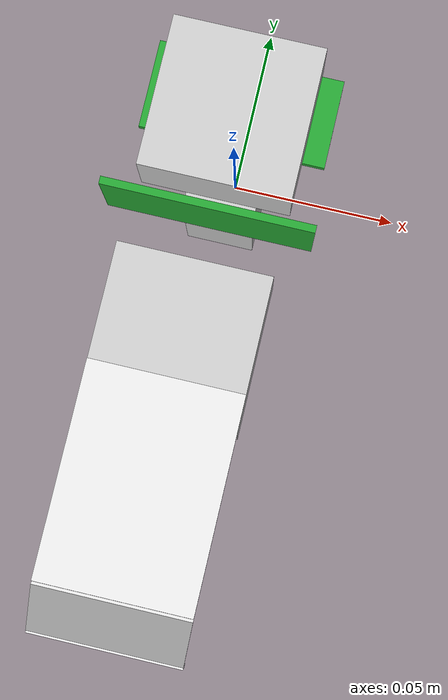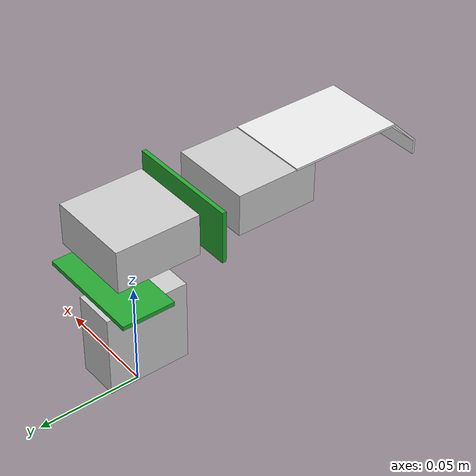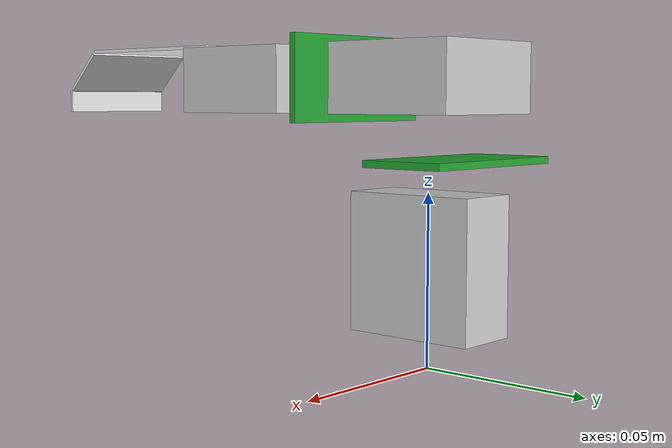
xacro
<robot name="lobot" xmlns:xacro="http://ros.org/wiki/xacro">
    <xacro:include filename="$(find lobot_description)/urdf/materials.urdf.xacro" />
    <xacro:include filename="$(find lobot_description)/gazebo/gazebo_arm.urdf.xacro" />
    <xacro:gazebo_macro robot="arm_standalone" control_update_rate="100" status_update_rate="500" />
    <link name="world" />
    <joint name="world_joint" type="fixed">
        <parent link="world" />
        <child link="arm_1_link" />
        <origin xyz="0 0 0.03" rpy="0 0 0" />
    </joint>
    <gazebo reference="arm_1_link">
      <selfCollide>true</selfCollide>
    </gazebo>
    <link name="arm_1_link">
        <inertial>
            <mass value="0.06" />
            <origin rpy="0 0 0" xyz="0 0 0" />
            <inertia ixx="0.0" ixy="0.0" ixz="0.0" iyy="0.0" iyz="0.0" izz="0.0" />
        </inertial>
        <visual>
            <origin rpy="0 0 0" xyz="0 0 0" />
            <geometry>
                <box size="0.02 0.04 0.04" />
            </geometry>
            <material name="LightGrey" />
        </visual>
        <collision>
            <origin rpy="0 0 0" xyz="0 0 0" />
            <geometry>
                <box size="0.02 0.04 0.04" />
            </geometry>
        </collision>
    </link>

    <joint name="arm_1_joint" type="revolute">
        <origin xyz="0 0.01 0.0" rpy="0 0 0" />
        <axis xyz="0 0 1" />
        <parent link="arm_1_link" />
        <child link="arm_bracket_1" />
        <limit lower="-2.356" upper="2.356" effort="20" velocity="10" />
    </joint>

    <link name="arm_bracket_1">
        <inertial>
            <mass value="0.00658" />
            <origin xyz="0 0 0.03693" rpy="0 0 0" />
            <inertia ixx="0.00097149" ixy="0.0" ixz="0.0" iyy="0.00390446" iyz="0.0" izz="0.00346115" />
        </inertial>
        <visual>
            <origin xyz="0 0 0.029" rpy="0 0 0" />
            <geometry>
                <box size="0.052 0.025 0.002" />
            </geometry>
            <material name="Green" />
        </visual>
        <collision>
            <origin xyz="0 0 0.029" rpy="0 0 0" />
            <geometry>
                <box size="0.052 0.025 0.002" />
            </geometry>
        </collision>
    </link>

    <joint name="arm_2_joint" type="revolute">
        <origin xyz="0 0 0.052" rpy="0 0 0" />
        <axis xyz="1 0 0" />
        <parent link="arm_bracket_1" />
        <child link="arm_2_link" />
        <limit lower="-1.570796" upper="1.570796" effort="20" velocity="20" />
    </joint>
    <!-- arm_2_link = motor2 -->
    <link name="arm_2_link">
        <inertial>
            <mass value="0.0618" />
            <origin xyz="0.0005 -0.01505 0" rpy="0 0 0" />
            <inertia ixx="0.00703304" ixy="-0.00250174" ixz="0.0" iyy="0.00793603" iyz="0.0" izz="0.01230371" />
        </inertial>
        <visual>
            <origin xyz="0 -0.01 0" rpy="0 0 0" />
            <geometry>
                <box size="0.04 0.04 0.02" />
            </geometry>
            <material name="LightGrey" />
        </visual>
        <collision>
            <origin xyz="0 -0.01 0" rpy="0 0 0" />
            <geometry>
                <box size="0.04 0.04 0.02" />
            </geometry>
        </collision>
    </link>

    <!-- arm_bracket_2 = Asm_WeldedBracket -->
    <link name="arm_bracket_2">
        <inertial>
            <mass value="0.01175" />
            <origin xyz="0 -0.0029 0" rpy="0 0 0" />
            <inertia ixx="0.00229954" ixy="0.0" ixz="0.0" iyy="0.00519619" iyz="0.0" izz="0.00648306" />
        </inertial>
        <visual>
            <origin xyz="0 0 0" rpy="0 0 0" />
            <geometry>
                <box size="0.055 0.002 0.025" />
            </geometry>
            <material name="Green" />
        </visual>
        <collision>
            <origin xyz="0 0 0" rpy="0 0 0" />
            <geometry>
                <box size="0.055 0.002 0.025" />
            </geometry>
        </collision>
    </link>

    <joint name="arm_bracket_2_joint" type="fixed">
        <parent link="arm_2_link" />
        <child link="arm_bracket_2" />
        <origin xyz="0 -0.03653 0" rpy="0 0 0" />
    </joint>

    <joint name="arm_3_joint" type="revolute">
        <origin xyz="0 -0.06 0" rpy="0 0 0" />
        <axis xyz="1 0 0" />
        <parent link="arm_2_link" />
        <child link="arm_3_link" />
        <limit lower="-1.570796" upper="1.570796" effort="10" velocity="10" />
    </joint>
    <!-- arm_3_link = motor3 -->
    <link name="arm_3_link">
        <inertial>
            <mass value="0.0618" />
            <origin xyz="0.0005 -0.01505 0" rpy="0 0 0" />
            <inertia ixx="0.00703304" ixy="-0.00250174" ixz="0.0" iyy="0.00793603" iyz="0.0" izz="0.01230371" />
        </inertial>
        <visual>
            <origin xyz="0 -0.01 0" rpy="0 0 0" />
            <geometry>
                <box size="0.04 0.04 0.02" />
            </geometry>
            <material name="LightGrey" />
        </visual>
        <collision>
            <origin xyz="0 -0.01 0" rpy="0 0 0" />
            <geometry>
                <box size="0.04 0.04 0.02" />
            </geometry>
        </collision>
    </link>
    <!-- The entire grippper mass property is put on the first link -->
    <joint name="grip_joint_1" type="fixed">
        <parent link="arm_3_link" />
        <child link="grip_link_1" />
        <origin xyz="0 -0.0475 0.01" rpy="0 0 0" />
    </joint>
    <link name="grip_link_1">
        <inertial>
            <mass value="0.01023" />
            <origin xyz="0 -0.05355 0" rpy="0 0 0" />
            <inertia ixx="0.00443574" ixy="0.0" ixz="0.0" iyy="0.00287052" iyz="0.00000684" izz="0.00651523" />
        </inertial>
        <visual>
            <origin xyz="0 0 0" rpy="0 0 0" />
            <geometry>
                <box size="0.04 0.055 0.001" />
            </geometry>
            <material name="White" />
        </visual>
        <collision>
            <origin xyz="0 0 0" rpy="0 0 0" />
            <geometry>
                <box size="0.04 0.055 0.001" />
            </geometry>
        </collision>
    </link>
    <joint name="grip_joint_2" type="fixed">
        <parent link="arm_3_link" />
        <child link="grip_link_2" />
        <origin xyz="0 -0.0815 0.0033" rpy="0 0 0" />
    </joint>
    <link name="grip_link_2">
        <inertial>
            <mass value="0.005" />
            <origin xyz="0 0 0" rpy="0.785398 0 0" />
            <inertia ixx="0.0" ixy="0.0" ixz="0.0" iyy="0.0" iyz="0.0" izz="0.0" />
        </inertial>
        <visual>
            <origin xyz="0 0 0" rpy="0.785398 0 0" />
            <geometry>
                <box size="0.04 0.017 0.001" />
            </geometry>
            <material name="White" />
        </visual>
        <collision>
            <origin xyz="0 0 0" rpy="0.785398 0 0" />
            <geometry>
                <box size="0.04 0.017 0.001" />
            </geometry>
        </collision>
    </link>
    <joint name="grip_joint_3" type="fixed">
        <parent link="arm_3_link" />
        <child link="grip_link_3" />
        <origin xyz="0 -0.088 -0.0067" rpy="0 0 0" />
    </joint>
    <link name="grip_link_3">
        <inertial>
            <mass value="0.005" />
            <origin xyz="0 0 0" rpy="0 0 0" />
            <inertia ixx="0.0" ixy="0.0" ixz="0.0" iyy="0.0" iyz="0.0" izz="0.0" />
        </inertial>
        <visual>
            <origin xyz="0 0 0" rpy="0 0 0" />
            <geometry>
                <box size="0.04 0.001 0.007" />
            </geometry>
            <material name="White" />
        </visual>
        <collision>
            <origin xyz="0 0 0" rpy="0 0 0" />
            <geometry>
                <box size="0.04 0.001 0.007" />
            </geometry>
        </collision>
    </link>
</robot>
